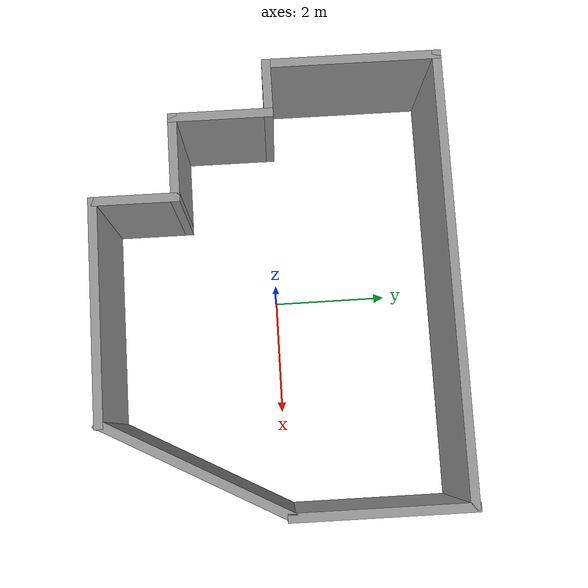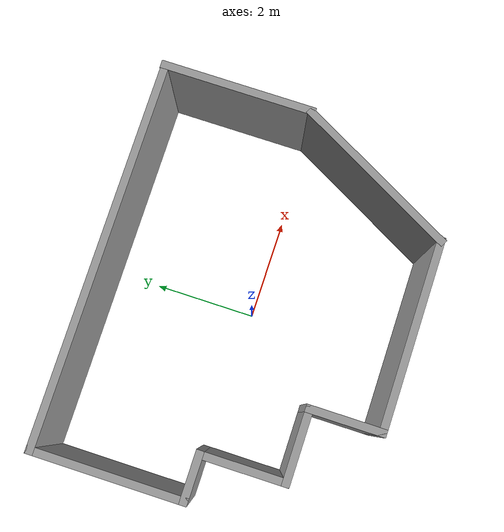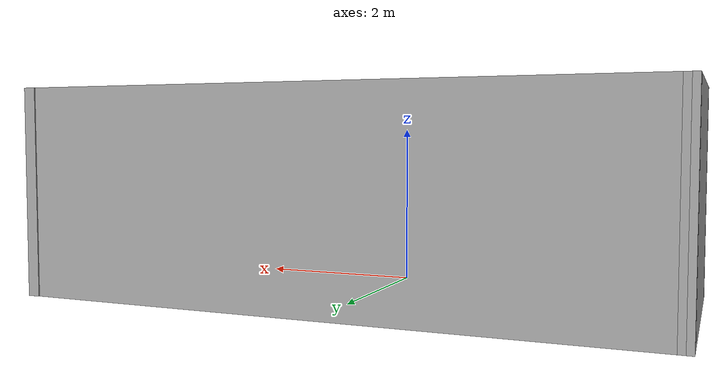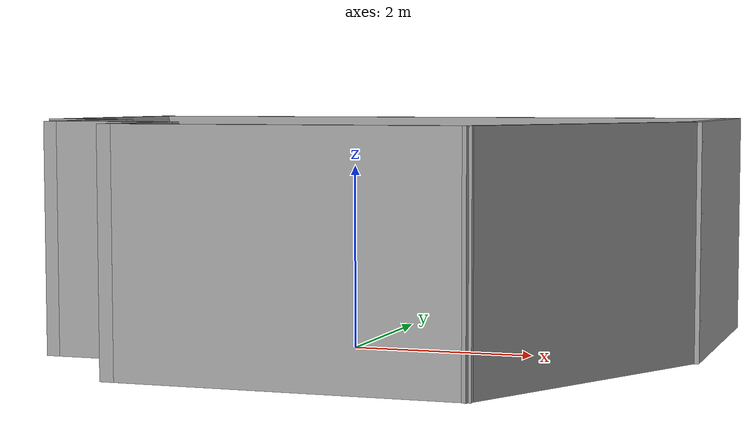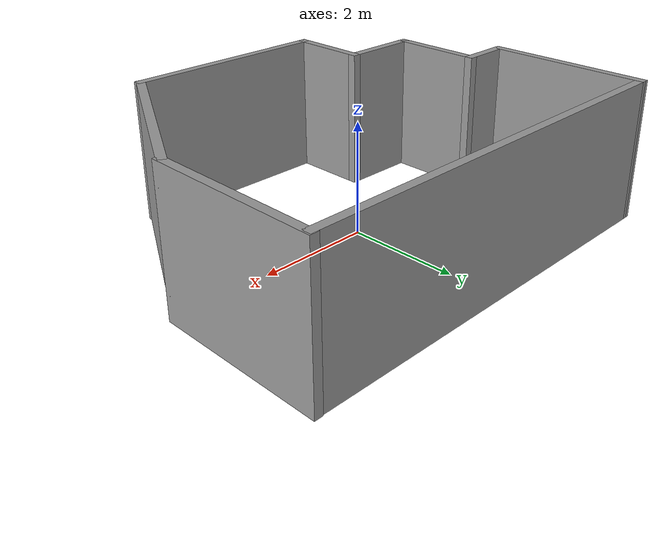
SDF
<?xml version='1.0'?>
<sdf version='1.7'>
  <model name='world'>
    <pose>0.007667 -0.014206 0 0 -0 0</pose>
    <link name='Wall_10'>
      <collision name='Wall_10_Collision'>
        <geometry>
          <box>
            <size>7.51921 0.15 2.5</size>
          </box>
        </geometry>
        <pose>0 0 1.25 0 -0 0</pose>
      </collision>
      <visual name='Wall_10_Visual'>
        <pose>0 0 1.25 0 -0 0</pose>
        <geometry>
          <box>
            <size>7.51921 0.15 2.5</size>
          </box>
        </geometry>
        <material>
          <script>
            <uri>file://media/materials/scripts/gazebo.material</uri>
            <name>Gazebo/Grey</name>
          </script>
          <ambient>1 1 1 1</ambient>
        </material>
        <meta>
          <layer>0</layer>
        </meta>
      </visual>
      <pose>-0.013192 2.90663 0 0 -0 -0.00124</pose>
    </link>
    <link name='Wall_11'>
      <collision name='Wall_11_Collision'>
        <geometry>
          <box>
            <size>3 0.15 2.5</size>
          </box>
        </geometry>
        <pose>0 0 1.25 0 -0 0</pose>
      </collision>
      <visual name='Wall_11_Visual'>
        <pose>0 0 1.25 0 -0 0</pose>
        <geometry>
          <box>
            <size>3 0.15 2.5</size>
          </box>
        </geometry>
        <material>
          <script>
            <uri>file://media/materials/scripts/gazebo.material</uri>
            <name>Gazebo/Grey</name>
          </script>
          <ambient>1 1 1 1</ambient>
        </material>
        <meta>
          <layer>0</layer>
        </meta>
      </visual>
      <pose>3.69786 1.49028 0 0 -0 -1.5708</pose>
    </link>
    <link name='Wall_12'>
      <collision name='Wall_12_Collision'>
        <geometry>
          <box>
            <size>3.48332 0.15 2.5</size>
          </box>
        </geometry>
        <pose>0 0 1.25 0 -0 0</pose>
      </collision>
      <visual name='Wall_12_Visual'>
        <pose>0 0 1.25 0 -0 0</pose>
        <geometry>
          <box>
            <size>3.48332 0.15 2.5</size>
          </box>
        </geometry>
        <material>
          <script>
            <uri>file://media/materials/scripts/gazebo.material</uri>
            <name>Gazebo/Grey</name>
          </script>
          <ambient>1 1 1 1</ambient>
        </material>
        <meta>
          <layer>0</layer>
        </meta>
      </visual>
      <pose>2.88681 -1.41837 0 0 -0 -2.06095</pose>
    </link>
    <link name='Wall_13'>
      <collision name='Wall_13_Collision'>
        <geometry>
          <box>
            <size>3.75 0.15 2.5</size>
          </box>
        </geometry>
        <pose>0 0 1.25 0 -0 0</pose>
      </collision>
      <visual name='Wall_13_Visual'>
        <pose>0 0 1.25 0 -0 0</pose>
        <geometry>
          <box>
            <size>3.75 0.15 2.5</size>
          </box>
        </geometry>
        <material>
          <script>
            <uri>file://media/materials/scripts/gazebo.material</uri>
            <name>Gazebo/Grey</name>
          </script>
          <ambient>1 1 1 1</ambient>
        </material>
        <meta>
          <layer>0</layer>
        </meta>
      </visual>
      <pose>0.302208 -2.8888 0 0 -0 3.14159</pose>
    </link>
    <link name='Wall_14'>
      <collision name='Wall_14_Collision'>
        <geometry>
          <box>
            <size>1.5 0.15 2.5</size>
          </box>
        </geometry>
        <pose>0 0 1.25 0 -0 0</pose>
      </collision>
      <visual name='Wall_14_Visual'>
        <pose>0 0 1.25 0 -0 0</pose>
        <geometry>
          <box>
            <size>1.5 0.15 2.5</size>
          </box>
        </geometry>
        <material>
          <script>
            <uri>file://media/materials/scripts/gazebo.material</uri>
            <name>Gazebo/Grey</name>
          </script>
          <ambient>1 1 1 1</ambient>
        </material>
        <meta>
          <layer>0</layer>
        </meta>
      </visual>
      <pose>-1.49779 -2.2138 0 0 -0 1.5708</pose>
    </link>
    <link name='Wall_15'>
      <collision name='Wall_15_Collision'>
        <geometry>
          <box>
            <size>1.5 0.15 2.5</size>
          </box>
        </geometry>
        <pose>0 0 1.25 0 -0 0</pose>
      </collision>
      <visual name='Wall_15_Visual'>
        <pose>0 0 1.25 0 -0 0</pose>
        <geometry>
          <box>
            <size>1.5 0.15 2.5</size>
          </box>
        </geometry>
        <material>
          <script>
            <uri>file://media/materials/scripts/gazebo.material</uri>
            <name>Gazebo/Grey</name>
          </script>
          <ambient>1 1 1 1</ambient>
        </material>
        <meta>
          <layer>0</layer>
        </meta>
      </visual>
      <pose>-2.17279 -1.5388 0 0 -0 3.14159</pose>
    </link>
    <link name='Wall_16'>
      <collision name='Wall_16_Collision'>
        <geometry>
          <box>
            <size>1.75 0.15 2.5</size>
          </box>
        </geometry>
        <pose>0 0 1.25 0 -0 0</pose>
      </collision>
      <visual name='Wall_16_Visual'>
        <pose>0 0 1.25 0 -0 0</pose>
        <geometry>
          <box>
            <size>1.75 0.15 2.5</size>
          </box>
        </geometry>
        <material>
          <script>
            <uri>file://media/materials/scripts/gazebo.material</uri>
            <name>Gazebo/Grey</name>
          </script>
          <ambient>1 1 1 1</ambient>
        </material>
        <meta>
          <layer>0</layer>
        </meta>
      </visual>
      <pose>-2.84779 -0.738804 0 0 -0 1.5708</pose>
    </link>
    <link name='Wall_17'>
      <collision name='Wall_17_Collision'>
        <geometry>
          <box>
            <size>1 0.15 2.5</size>
          </box>
        </geometry>
        <pose>0 0 1.25 0 -0 0</pose>
      </collision>
      <visual name='Wall_17_Visual'>
        <pose>0 0 1.25 0 -0 0</pose>
        <geometry>
          <box>
            <size>1 0.15 2.5</size>
          </box>
        </geometry>
        <material>
          <script>
            <uri>file://media/materials/scripts/gazebo.material</uri>
            <name>Gazebo/Grey</name>
          </script>
          <ambient>1 1 1 1</ambient>
        </material>
        <meta>
          <layer>0</layer>
        </meta>
      </visual>
      <pose>-3.27279 0.061196 0 0 -0 3.14159</pose>
    </link>
    <link name='Wall_18'>
      <collision name='Wall_18_Collision'>
        <geometry>
          <box>
            <size>3 0.15 2.5</size>
          </box>
        </geometry>
        <pose>0 0 1.25 0 -0 0</pose>
      </collision>
      <visual name='Wall_18_Visual'>
        <pose>0 0 1.25 0 -0 0</pose>
        <geometry>
          <box>
            <size>3 0.15 2.5</size>
          </box>
        </geometry>
        <material>
          <script>
            <uri>file://media/materials/scripts/gazebo.material</uri>
            <name>Gazebo/Grey</name>
          </script>
          <ambient>1 1 1 1</ambient>
        </material>
        <meta>
          <layer>0</layer>
        </meta>
      </visual>
      <pose>-3.69779 1.4862 0 0 -0 1.5708</pose>
    </link>
    <static>1</static>
  </model>
</sdf>
